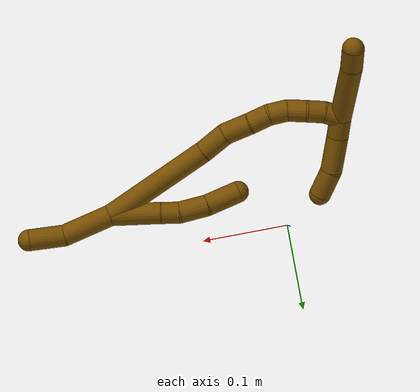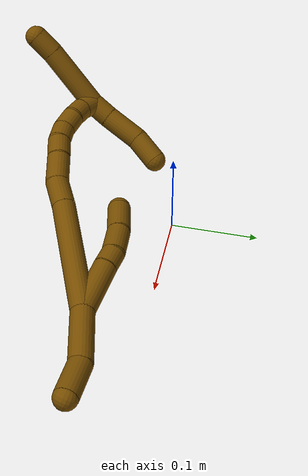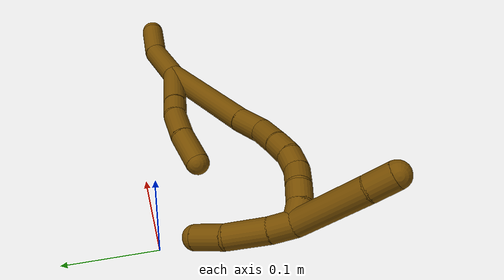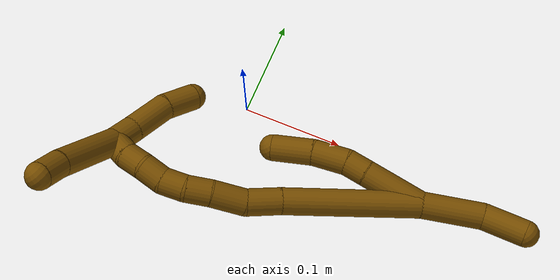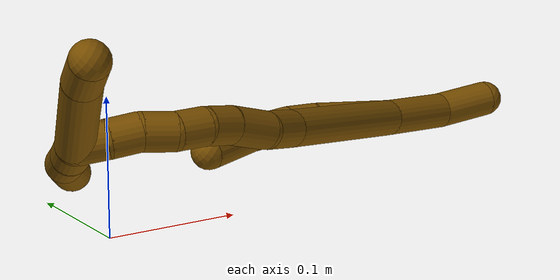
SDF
<sdf version="1.7">
 <world name="default">
  <model name="12">
   <static>0</static>
   <link name="12">
    <collision name="collision-cylinder-e_1_2_8">
     <pose>-0.014283 0.008505 0.023288 -0.350168 -0.522661 0.09455</pose>
     <geometry><cylinder><radius>0.0125</radius><length>0.057226</length></cylinder></geometry>
     <surface>
      <friction><ode><mu>1.16</mu><mu2>1.16</mu2><slip1>0</slip1><slip2>0</slip2></ode></friction>
      <contact><ode><kp>1e+06</kp><kd>1</kd><max_vel>0</max_vel><min_depth>0.001</min_depth></ode></contact>
     </surface>
    </collision>
    <visual name="visual-cylinder-e_1_2_8">
     <pose>-0.014283 0.008505 0.023288 -0.350168 -0.522661 0.09455</pose>
     <geometry><cylinder><radius>0.0125</radius><length>0.057226</length></cylinder></geometry>
     <material><ambient>0.466667 0.301961 0 1</ambient></material>
    </visual>
    <collision name="collision-cylinder-e_2_8_9">
     <pose>-0.03406 0.020796 0.054555 -0.442942 -0.556519 0.128469</pose>
     <geometry><cylinder><radius>0.0125</radius><length>0.0208</length></cylinder></geometry>
     <surface>
      <friction><ode><mu>1.16</mu><mu2>1.16</mu2><slip1>0</slip1><slip2>0</slip2></ode></friction>
      <contact><ode><kp>1e+06</kp><kd>1</kd><max_vel>0</max_vel><min_depth>0.001</min_depth></ode></contact>
     </surface>
    </collision>
    <visual name="visual-cylinder-e_2_8_9">
     <pose>-0.03406 0.020796 0.054555 -0.442942 -0.556519 0.128469</pose>
     <geometry><cylinder><radius>0.0125</radius><length>0.0208</length></cylinder></geometry>
     <material><ambient>0.466667 0.301961 0 1</ambient></material>
    </visual>
    <collision name="collision-cylinder-e_3_9_10">
     <pose>-0.050962 0.028012 0.073775 -0.296258 -0.770533 0.120881</pose>
     <geometry><cylinder><radius>0.0125</radius><length>0.032759</length></cylinder></geometry>
     <surface>
      <friction><ode><mu>1.16</mu><mu2>1.16</mu2><slip1>0</slip1><slip2>0</slip2></ode></friction>
      <contact><ode><kp>1e+06</kp><kd>1</kd><max_vel>0</max_vel><min_depth>0.001</min_depth></ode></contact>
     </surface>
    </collision>
    <visual name="visual-cylinder-e_3_9_10">
     <pose>-0.050962 0.028012 0.073775 -0.296258 -0.770533 0.120881</pose>
     <geometry><cylinder><radius>0.0125</radius><length>0.032759</length></cylinder></geometry>
     <material><ambient>0.466667 0.301961 0 1</ambient></material>
    </visual>
    <collision name="collision-cylinder-e_4_10_6">
     <pose>-0.077952 0.033687 0.096705 -0.18965 -0.918425 0.093989</pose>
     <geometry><cylinder><radius>0.0125</radius><length>0.039215</length></cylinder></geometry>
     <surface>
      <friction><ode><mu>1.16</mu><mu2>1.16</mu2><slip1>0</slip1><slip2>0</slip2></ode></friction>
      <contact><ode><kp>1e+06</kp><kd>1</kd><max_vel>0</max_vel><min_depth>0.001</min_depth></ode></contact>
     </surface>
    </collision>
    <visual name="visual-cylinder-e_4_10_6">
     <pose>-0.077952 0.033687 0.096705 -0.18965 -0.918425 0.093989</pose>
     <geometry><cylinder><radius>0.0125</radius><length>0.039215</length></cylinder></geometry>
     <material><ambient>0.466667 0.301961 0 1</ambient></material>
    </visual>
    <collision name="collision-cylinder-e_1_2_11">
     <pose>0.020275 0.000219 -0.021169 -3.13126 0.76382 -3.11587</pose>
     <geometry><cylinder><radius>0.0125</radius><length>0.058626</length></cylinder></geometry>
     <surface>
      <friction><ode><mu>1.16</mu><mu2>1.16</mu2><slip1>0</slip1><slip2>0</slip2></ode></friction>
      <contact><ode><kp>1e+06</kp><kd>1</kd><max_vel>0</max_vel><min_depth>0.001</min_depth></ode></contact>
     </surface>
    </collision>
    <visual name="visual-cylinder-e_1_2_11">
     <pose>0.020275 0.000219 -0.021169 -3.13126 0.76382 -3.11587</pose>
     <geometry><cylinder><radius>0.0125</radius><length>0.058626</length></cylinder></geometry>
     <material><ambient>0.466667 0.301961 0 1</ambient></material>
    </visual>
    <collision name="collision-cylinder-e_2_11_5">
     <pose>0.05389 -0.006321 -0.056632 2.69994 0.700762 2.03991</pose>
     <geometry><cylinder><radius>0.0125</radius><length>0.041374</length></cylinder></geometry>
     <surface>
      <friction><ode><mu>1.16</mu><mu2>1.16</mu2><slip1>0</slip1><slip2>0</slip2></ode></friction>
      <contact><ode><kp>1e+06</kp><kd>1</kd><max_vel>0</max_vel><min_depth>0.001</min_depth></ode></contact>
     </surface>
    </collision>
    <visual name="visual-cylinder-e_2_11_5">
     <pose>0.05389 -0.006321 -0.056632 2.69994 0.700762 2.03991</pose>
     <geometry><cylinder><radius>0.0125</radius><length>0.041374</length></cylinder></geometry>
     <material><ambient>0.466667 0.301961 0 1</ambient></material>
    </visual>
    <collision name="collision-cylinder-e_1_2_12">
     <pose>-0.046157 -0.012503 0.043415 0.280404 -0.796097 -0.118548</pose>
     <geometry><cylinder><radius>0.0125</radius><length>0.129177</length></cylinder></geometry>
     <surface>
      <friction><ode><mu>1.16</mu><mu2>1.16</mu2><slip1>0</slip1><slip2>0</slip2></ode></friction>
      <contact><ode><kp>1e+06</kp><kd>1</kd><max_vel>0</max_vel><min_depth>0.001</min_depth></ode></contact>
     </surface>
    </collision>
    <visual name="visual-cylinder-e_1_2_12">
     <pose>-0.046157 -0.012503 0.043415 0.280404 -0.796097 -0.118548</pose>
     <geometry><cylinder><radius>0.0125</radius><length>0.129177</length></cylinder></geometry>
     <material><ambient>0.466667 0.301961 0 1</ambient></material>
    </visual>
    <collision name="collision-cylinder-e_2_12_13">
     <pose>-0.103828 -0.029511 0.097351 0.404572 -0.788424 -0.170218</pose>
     <geometry><cylinder><radius>0.0125</radius><length>0.032468</length></cylinder></geometry>
     <surface>
      <friction><ode><mu>1.16</mu><mu2>1.16</mu2><slip1>0</slip1><slip2>0</slip2></ode></friction>
      <contact><ode><kp>1e+06</kp><kd>1</kd><max_vel>0</max_vel><min_depth>0.001</min_depth></ode></contact>
     </surface>
    </collision>
    <visual name="visual-cylinder-e_2_12_13">
     <pose>-0.103828 -0.029511 0.097351 0.404572 -0.788424 -0.170218</pose>
     <geometry><cylinder><radius>0.0125</radius><length>0.032468</length></cylinder></geometry>
     <material><ambient>0.466667 0.301961 0 1</ambient></material>
    </visual>
    <collision name="collision-cylinder-e_3_13_14">
     <pose>-0.124212 -0.035672 0.121109 0.124443 -0.586775 -0.037639</pose>
     <geometry><cylinder><radius>0.0125</radius><length>0.032043</length></cylinder></geometry>
     <surface>
      <friction><ode><mu>1.16</mu><mu2>1.16</mu2><slip1>0</slip1><slip2>0</slip2></ode></friction>
      <contact><ode><kp>1e+06</kp><kd>1</kd><max_vel>0</max_vel><min_depth>0.001</min_depth></ode></contact>
     </surface>
    </collision>
    <visual name="visual-cylinder-e_3_13_14">
     <pose>-0.124212 -0.035672 0.121109 0.124443 -0.586775 -0.037639</pose>
     <geometry><cylinder><radius>0.0125</radius><length>0.032043</length></cylinder></geometry>
     <material><ambient>0.466667 0.301961 0 1</ambient></material>
    </visual>
    <collision name="collision-cylinder-e_4_14_15">
     <pose>-0.14064 -0.038076 0.143008 0.086126 -0.715658 -0.032222</pose>
     <geometry><cylinder><radius>0.0125</radius><length>0.023037</length></cylinder></geometry>
     <surface>
      <friction><ode><mu>1.16</mu><mu2>1.16</mu2><slip1>0</slip1><slip2>0</slip2></ode></friction>
      <contact><ode><kp>1e+06</kp><kd>1</kd><max_vel>0</max_vel><min_depth>0.001</min_depth></ode></contact>
     </surface>
    </collision>
    <visual name="visual-cylinder-e_4_14_15">
     <pose>-0.14064 -0.038076 0.143008 0.086126 -0.715658 -0.032222</pose>
     <geometry><cylinder><radius>0.0125</radius><length>0.023037</length></cylinder></geometry>
     <material><ambient>0.466667 0.301961 0 1</ambient></material>
    </visual>
    <collision name="collision-cylinder-e_5_15_16">
     <pose>-0.155251 -0.036747 0.159509 -0.258851 -0.715752 0.097273</pose>
     <geometry><cylinder><radius>0.0125</radius><length>0.021499</length></cylinder></geometry>
     <surface>
      <friction><ode><mu>1.16</mu><mu2>1.16</mu2><slip1>0</slip1><slip2>0</slip2></ode></friction>
      <contact><ode><kp>1e+06</kp><kd>1</kd><max_vel>0</max_vel><min_depth>0.001</min_depth></ode></contact>
     </surface>
    </collision>
    <visual name="visual-cylinder-e_5_15_16">
     <pose>-0.155251 -0.036747 0.159509 -0.258851 -0.715752 0.097273</pose>
     <geometry><cylinder><radius>0.0125</radius><length>0.021499</length></cylinder></geometry>
     <material><ambient>0.466667 0.301961 0 1</ambient></material>
    </visual>
    <collision name="collision-cylinder-e_6_16_17">
     <pose>-0.166929 -0.030889 0.17635 -0.397805 -0.442404 0.090596</pose>
     <geometry><cylinder><radius>0.0125</radius><length>0.021602</length></cylinder></geometry>
     <surface>
      <friction><ode><mu>1.16</mu><mu2>1.16</mu2><slip1>0</slip1><slip2>0</slip2></ode></friction>
      <contact><ode><kp>1e+06</kp><kd>1</kd><max_vel>0</max_vel><min_depth>0.001</min_depth></ode></contact>
     </surface>
    </collision>
    <visual name="visual-cylinder-e_6_16_17">
     <pose>-0.166929 -0.030889 0.17635 -0.397805 -0.442404 0.090596</pose>
     <geometry><cylinder><radius>0.0125</radius><length>0.021602</length></cylinder></geometry>
     <material><ambient>0.466667 0.301961 0 1</ambient></material>
    </visual>
    <collision name="collision-cylinder-e_7_17_18">
     <pose>-0.17706 -0.02228 0.192283 -0.608144 -0.577646 0.185944</pose>
     <geometry><cylinder><radius>0.0125</radius><length>0.020173</length></cylinder></geometry>
     <surface>
      <friction><ode><mu>1.16</mu><mu2>1.16</mu2><slip1>0</slip1><slip2>0</slip2></ode></friction>
      <contact><ode><kp>1e+06</kp><kd>1</kd><max_vel>0</max_vel><min_depth>0.001</min_depth></ode></contact>
     </surface>
    </collision>
    <visual name="visual-cylinder-e_7_17_18">
     <pose>-0.17706 -0.02228 0.192283 -0.608144 -0.577646 0.185944</pose>
     <geometry><cylinder><radius>0.0125</radius><length>0.020173</length></cylinder></geometry>
     <material><ambient>0.466667 0.301961 0 1</ambient></material>
    </visual>
    <collision name="collision-cylinder-e_8_18_1">
     <pose>-0.186526 -0.011028 0.205783 -0.774632 -0.406822 0.167883</pose>
     <geometry><cylinder><radius>0.0125</radius><length>0.020003</length></cylinder></geometry>
     <surface>
      <friction><ode><mu>1.16</mu><mu2>1.16</mu2><slip1>0</slip1><slip2>0</slip2></ode></friction>
      <contact><ode><kp>1e+06</kp><kd>1</kd><max_vel>0</max_vel><min_depth>0.001</min_depth></ode></contact>
     </surface>
    </collision>
    <visual name="visual-cylinder-e_8_18_1">
     <pose>-0.186526 -0.011028 0.205783 -0.774632 -0.406822 0.167883</pose>
     <geometry><cylinder><radius>0.0125</radius><length>0.020003</length></cylinder></geometry>
     <material><ambient>0.466667 0.301961 0 1</ambient></material>
    </visual>
    <collision name="collision-cylinder-e_1_1_19">
     <pose>-0.197524 -0.037086 0.228863 1.1004 -0.190857 -0.11729</pose>
     <geometry><cylinder><radius>0.0125</radius><length>0.074228</length></cylinder></geometry>
     <surface>
      <friction><ode><mu>1.16</mu><mu2>1.16</mu2><slip1>0</slip1><slip2>0</slip2></ode></friction>
      <contact><ode><kp>1e+06</kp><kd>1</kd><max_vel>0</max_vel><min_depth>0.001</min_depth></ode></contact>
     </surface>
    </collision>
    <visual name="visual-cylinder-e_1_1_19">
     <pose>-0.197524 -0.037086 0.228863 1.1004 -0.190857 -0.11729</pose>
     <geometry><cylinder><radius>0.0125</radius><length>0.074228</length></cylinder></geometry>
     <material><ambient>0.466667 0.301961 0 1</ambient></material>
    </visual>
    <collision name="collision-cylinder-e_2_19_4">
     <pose>-0.207199 -0.081408 0.24973 1.21868 -0.205913 -0.143975</pose>
     <geometry><cylinder><radius>0.0125</radius><length>0.025772</length></cylinder></geometry>
     <surface>
      <friction><ode><mu>1.16</mu><mu2>1.16</mu2><slip1>0</slip1><slip2>0</slip2></ode></friction>
      <contact><ode><kp>1e+06</kp><kd>1</kd><max_vel>0</max_vel><min_depth>0.001</min_depth></ode></contact>
     </surface>
    </collision>
    <visual name="visual-cylinder-e_2_19_4">
     <pose>-0.207199 -0.081408 0.24973 1.21868 -0.205913 -0.143975</pose>
     <geometry><cylinder><radius>0.0125</radius><length>0.025772</length></cylinder></geometry>
     <material><ambient>0.466667 0.301961 0 1</ambient></material>
    </visual>
    <collision name="collision-cylinder-e_1_1_20">
     <pose>-0.185672 0.006131 0.208683 -1.89971 0.401152 -0.553831</pose>
     <geometry><cylinder><radius>0.0125</radius><length>0.024641</length></cylinder></geometry>
     <surface>
      <friction><ode><mu>1.16</mu><mu2>1.16</mu2><slip1>0</slip1><slip2>0</slip2></ode></friction>
      <contact><ode><kp>1e+06</kp><kd>1</kd><max_vel>0</max_vel><min_depth>0.001</min_depth></ode></contact>
     </surface>
    </collision>
    <visual name="visual-cylinder-e_1_1_20">
     <pose>-0.185672 0.006131 0.208683 -1.89971 0.401152 -0.553831</pose>
     <geometry><cylinder><radius>0.0125</radius><length>0.024641</length></cylinder></geometry>
     <material><ambient>0.466667 0.301961 0 1</ambient></material>
    </visual>
    <collision name="collision-cylinder-e_2_20_21">
     <pose>-0.170185 0.034501 0.199636 -1.86707 0.52484 -0.696151</pose>
     <geometry><cylinder><radius>0.0125</radius><length>0.042614</length></cylinder></geometry>
     <surface>
      <friction><ode><mu>1.16</mu><mu2>1.16</mu2><slip1>0</slip1><slip2>0</slip2></ode></friction>
      <contact><ode><kp>1e+06</kp><kd>1</kd><max_vel>0</max_vel><min_depth>0.001</min_depth></ode></contact>
     </surface>
    </collision>
    <visual name="visual-cylinder-e_2_20_21">
     <pose>-0.170185 0.034501 0.199636 -1.86707 0.52484 -0.696151</pose>
     <geometry><cylinder><radius>0.0125</radius><length>0.042614</length></cylinder></geometry>
     <material><ambient>0.466667 0.301961 0 1</ambient></material>
    </visual>
    <collision name="collision-cylinder-e_3_21_3">
     <pose>-0.150948 0.063808 0.1866 -2.15118 0.550221 -0.963167</pose>
     <geometry><cylinder><radius>0.0125</radius><length>0.032745</length></cylinder></geometry>
     <surface>
      <friction><ode><mu>1.16</mu><mu2>1.16</mu2><slip1>0</slip1><slip2>0</slip2></ode></friction>
      <contact><ode><kp>1e+06</kp><kd>1</kd><max_vel>0</max_vel><min_depth>0.001</min_depth></ode></contact>
     </surface>
    </collision>
    <visual name="visual-cylinder-e_3_21_3">
     <pose>-0.150948 0.063808 0.1866 -2.15118 0.550221 -0.963167</pose>
     <geometry><cylinder><radius>0.0125</radius><length>0.032745</length></cylinder></geometry>
     <material><ambient>0.466667 0.301961 0 1</ambient></material>
    </visual>
    <collision name="collision-sphere-3">
     <pose>-0.142387 0.075479 0.178947 0 -0 0</pose>
     <geometry><sphere><radius>0.0125</radius></sphere></geometry>
     <surface>
      <friction><ode><mu>1.16</mu><mu2>1.16</mu2><slip1>0</slip1><slip2>0</slip2></ode></friction>
      <contact><ode><kp>1e+06</kp><kd>1</kd><max_vel>0</max_vel><min_depth>0.001</min_depth></ode></contact>
     </surface>
    </collision>
    <visual name="visual-sphere-3">
     <pose>-0.142387 0.075479 0.178947 0 -0 0</pose>
     <geometry><sphere><radius>0.0125</radius></sphere></geometry>
     <material><ambient>0.466667 0.301961 0 1</ambient></material>
    </visual>
    <collision name="collision-sphere-21">
     <pose>-0.159508 0.052137 0.194252 0 -0 0</pose>
     <geometry><sphere><radius>0.0125</radius></sphere></geometry>
     <surface>
      <friction><ode><mu>1.16</mu><mu2>1.16</mu2><slip1>0</slip1><slip2>0</slip2></ode></friction>
      <contact><ode><kp>1e+06</kp><kd>1</kd><max_vel>0</max_vel><min_depth>0.001</min_depth></ode></contact>
     </surface>
    </collision>
    <visual name="visual-sphere-21">
     <pose>-0.159508 0.052137 0.194252 0 -0 0</pose>
     <geometry><sphere><radius>0.0125</radius></sphere></geometry>
     <material><ambient>0.466667 0.301961 0 1</ambient></material>
    </visual>
    <collision name="collision-sphere-20">
     <pose>-0.180861 0.016865 0.205019 0 -0 0</pose>
     <geometry><sphere><radius>0.0125</radius></sphere></geometry>
     <surface>
      <friction><ode><mu>1.16</mu><mu2>1.16</mu2><slip1>0</slip1><slip2>0</slip2></ode></friction>
      <contact><ode><kp>1e+06</kp><kd>1</kd><max_vel>0</max_vel><min_depth>0.001</min_depth></ode></contact>
     </surface>
    </collision>
    <visual name="visual-sphere-20">
     <pose>-0.180861 0.016865 0.205019 0 -0 0</pose>
     <geometry><sphere><radius>0.0125</radius></sphere></geometry>
     <material><ambient>0.466667 0.301961 0 1</ambient></material>
    </visual>
    <collision name="collision-sphere-4">
     <pose>-0.209833 -0.093247 0.25408 0 -0 0</pose>
     <geometry><sphere><radius>0.0125</radius></sphere></geometry>
     <surface>
      <friction><ode><mu>1.16</mu><mu2>1.16</mu2><slip1>0</slip1><slip2>0</slip2></ode></friction>
      <contact><ode><kp>1e+06</kp><kd>1</kd><max_vel>0</max_vel><min_depth>0.001</min_depth></ode></contact>
     </surface>
    </collision>
    <visual name="visual-sphere-4">
     <pose>-0.209833 -0.093247 0.25408 0 -0 0</pose>
     <geometry><sphere><radius>0.0125</radius></sphere></geometry>
     <material><ambient>0.466667 0.301961 0 1</ambient></material>
    </visual>
    <collision name="collision-sphere-11">
     <pose>0.040551 0.000437 -0.042337 0 -0 0</pose>
     <geometry><sphere><radius>0.0125</radius></sphere></geometry>
     <surface>
      <friction><ode><mu>1.16</mu><mu2>1.16</mu2><slip1>0</slip1><slip2>0</slip2></ode></friction>
      <contact><ode><kp>1e+06</kp><kd>1</kd><max_vel>0</max_vel><min_depth>0.001</min_depth></ode></contact>
     </surface>
    </collision>
    <visual name="visual-sphere-11">
     <pose>0.040551 0.000437 -0.042337 0 -0 0</pose>
     <geometry><sphere><radius>0.0125</radius></sphere></geometry>
     <material><ambient>0.466667 0.301961 0 1</ambient></material>
    </visual>
    <collision name="collision-sphere-6">
     <pose>-0.093533 0.035931 0.108395 0 -0 0</pose>
     <geometry><sphere><radius>0.0125</radius></sphere></geometry>
     <surface>
      <friction><ode><mu>1.16</mu><mu2>1.16</mu2><slip1>0</slip1><slip2>0</slip2></ode></friction>
      <contact><ode><kp>1e+06</kp><kd>1</kd><max_vel>0</max_vel><min_depth>0.001</min_depth></ode></contact>
     </surface>
    </collision>
    <visual name="visual-sphere-6">
     <pose>-0.093533 0.035931 0.108395 0 -0 0</pose>
     <geometry><sphere><radius>0.0125</radius></sphere></geometry>
     <material><ambient>0.466667 0.301961 0 1</ambient></material>
    </visual>
    <collision name="collision-sphere-10">
     <pose>-0.062371 0.031443 0.085016 0 -0 0</pose>
     <geometry><sphere><radius>0.0125</radius></sphere></geometry>
     <surface>
      <friction><ode><mu>1.16</mu><mu2>1.16</mu2><slip1>0</slip1><slip2>0</slip2></ode></friction>
      <contact><ode><kp>1e+06</kp><kd>1</kd><max_vel>0</max_vel><min_depth>0.001</min_depth></ode></contact>
     </surface>
    </collision>
    <visual name="visual-sphere-10">
     <pose>-0.062371 0.031443 0.085016 0 -0 0</pose>
     <geometry><sphere><radius>0.0125</radius></sphere></geometry>
     <material><ambient>0.466667 0.301961 0 1</ambient></material>
    </visual>
    <collision name="collision-sphere-9">
     <pose>-0.039554 0.02458 0.062534 0 -0 0</pose>
     <geometry><sphere><radius>0.0125</radius></sphere></geometry>
     <surface>
      <friction><ode><mu>1.16</mu><mu2>1.16</mu2><slip1>0</slip1><slip2>0</slip2></ode></friction>
      <contact><ode><kp>1e+06</kp><kd>1</kd><max_vel>0</max_vel><min_depth>0.001</min_depth></ode></contact>
     </surface>
    </collision>
    <visual name="visual-sphere-9">
     <pose>-0.039554 0.02458 0.062534 0 -0 0</pose>
     <geometry><sphere><radius>0.0125</radius></sphere></geometry>
     <material><ambient>0.466667 0.301961 0 1</ambient></material>
    </visual>
    <collision name="collision-sphere-2">
     <geometry><sphere><radius>0.0125</radius></sphere></geometry>
     <surface>
      <friction><ode><mu>1.16</mu><mu2>1.16</mu2><slip1>0</slip1><slip2>0</slip2></ode></friction>
      <contact><ode><kp>1e+06</kp><kd>1</kd><max_vel>0</max_vel><min_depth>0.001</min_depth></ode></contact>
     </surface>
    </collision>
    <visual name="visual-sphere-2">
     <geometry><sphere><radius>0.0125</radius></sphere></geometry>
     <material><ambient>0.466667 0.301961 0 1</ambient></material>
    </visual>
    <collision name="collision-sphere-19">
     <pose>-0.204564 -0.069568 0.245379 0 -0 0</pose>
     <geometry><sphere><radius>0.0125</radius></sphere></geometry>
     <surface>
      <friction><ode><mu>1.16</mu><mu2>1.16</mu2><slip1>0</slip1><slip2>0</slip2></ode></friction>
      <contact><ode><kp>1e+06</kp><kd>1</kd><max_vel>0</max_vel><min_depth>0.001</min_depth></ode></contact>
     </surface>
    </collision>
    <visual name="visual-sphere-19">
     <pose>-0.204564 -0.069568 0.245379 0 -0 0</pose>
     <geometry><sphere><radius>0.0125</radius></sphere></geometry>
     <material><ambient>0.466667 0.301961 0 1</ambient></material>
    </visual>
    <collision name="collision-sphere-8">
     <pose>-0.028566 0.017011 0.046577 0 -0 0</pose>
     <geometry><sphere><radius>0.0125</radius></sphere></geometry>
     <surface>
      <friction><ode><mu>1.16</mu><mu2>1.16</mu2><slip1>0</slip1><slip2>0</slip2></ode></friction>
      <contact><ode><kp>1e+06</kp><kd>1</kd><max_vel>0</max_vel><min_depth>0.001</min_depth></ode></contact>
     </surface>
    </collision>
    <visual name="visual-sphere-8">
     <pose>-0.028566 0.017011 0.046577 0 -0 0</pose>
     <geometry><sphere><radius>0.0125</radius></sphere></geometry>
     <material><ambient>0.466667 0.301961 0 1</ambient></material>
    </visual>
    <collision name="collision-sphere-5">
     <pose>0.067229 -0.01308 -0.070927 0 -0 0</pose>
     <geometry><sphere><radius>0.0125</radius></sphere></geometry>
     <surface>
      <friction><ode><mu>1.16</mu><mu2>1.16</mu2><slip1>0</slip1><slip2>0</slip2></ode></friction>
      <contact><ode><kp>1e+06</kp><kd>1</kd><max_vel>0</max_vel><min_depth>0.001</min_depth></ode></contact>
     </surface>
    </collision>
    <visual name="visual-sphere-5">
     <pose>0.067229 -0.01308 -0.070927 0 -0 0</pose>
     <geometry><sphere><radius>0.0125</radius></sphere></geometry>
     <material><ambient>0.466667 0.301961 0 1</ambient></material>
    </visual>
    <collision name="collision-sphere-12">
     <pose>-0.092314 -0.025006 0.08683 0 -0 0</pose>
     <geometry><sphere><radius>0.0125</radius></sphere></geometry>
     <surface>
      <friction><ode><mu>1.16</mu><mu2>1.16</mu2><slip1>0</slip1><slip2>0</slip2></ode></friction>
      <contact><ode><kp>1e+06</kp><kd>1</kd><max_vel>0</max_vel><min_depth>0.001</min_depth></ode></contact>
     </surface>
    </collision>
    <visual name="visual-sphere-12">
     <pose>-0.092314 -0.025006 0.08683 0 -0 0</pose>
     <geometry><sphere><radius>0.0125</radius></sphere></geometry>
     <material><ambient>0.466667 0.301961 0 1</ambient></material>
    </visual>
    <collision name="collision-sphere-13">
     <pose>-0.115341 -0.034016 0.107871 0 -0 0</pose>
     <geometry><sphere><radius>0.0125</radius></sphere></geometry>
     <surface>
      <friction><ode><mu>1.16</mu><mu2>1.16</mu2><slip1>0</slip1><slip2>0</slip2></ode></friction>
      <contact><ode><kp>1e+06</kp><kd>1</kd><max_vel>0</max_vel><min_depth>0.001</min_depth></ode></contact>
     </surface>
    </collision>
    <visual name="visual-sphere-13">
     <pose>-0.115341 -0.034016 0.107871 0 -0 0</pose>
     <geometry><sphere><radius>0.0125</radius></sphere></geometry>
     <material><ambient>0.466667 0.301961 0 1</ambient></material>
    </visual>
    <collision name="collision-sphere-14">
     <pose>-0.133082 -0.037328 0.134347 0 -0 0</pose>
     <geometry><sphere><radius>0.0125</radius></sphere></geometry>
     <surface>
      <friction><ode><mu>1.16</mu><mu2>1.16</mu2><slip1>0</slip1><slip2>0</slip2></ode></friction>
      <contact><ode><kp>1e+06</kp><kd>1</kd><max_vel>0</max_vel><min_depth>0.001</min_depth></ode></contact>
     </surface>
    </collision>
    <visual name="visual-sphere-14">
     <pose>-0.133082 -0.037328 0.134347 0 -0 0</pose>
     <geometry><sphere><radius>0.0125</radius></sphere></geometry>
     <material><ambient>0.466667 0.301961 0 1</ambient></material>
    </visual>
    <collision name="collision-sphere-15">
     <pose>-0.148197 -0.038823 0.151668 0 -0 0</pose>
     <geometry><sphere><radius>0.0125</radius></sphere></geometry>
     <surface>
      <friction><ode><mu>1.16</mu><mu2>1.16</mu2><slip1>0</slip1><slip2>0</slip2></ode></friction>
      <contact><ode><kp>1e+06</kp><kd>1</kd><max_vel>0</max_vel><min_depth>0.001</min_depth></ode></contact>
     </surface>
    </collision>
    <visual name="visual-sphere-15">
     <pose>-0.148197 -0.038823 0.151668 0 -0 0</pose>
     <geometry><sphere><radius>0.0125</radius></sphere></geometry>
     <material><ambient>0.466667 0.301961 0 1</ambient></material>
    </visual>
    <collision name="collision-sphere-16">
     <pose>-0.162305 -0.034671 0.167351 0 -0 0</pose>
     <geometry><sphere><radius>0.0125</radius></sphere></geometry>
     <surface>
      <friction><ode><mu>1.16</mu><mu2>1.16</mu2><slip1>0</slip1><slip2>0</slip2></ode></friction>
      <contact><ode><kp>1e+06</kp><kd>1</kd><max_vel>0</max_vel><min_depth>0.001</min_depth></ode></contact>
     </surface>
    </collision>
    <visual name="visual-sphere-16">
     <pose>-0.162305 -0.034671 0.167351 0 -0 0</pose>
     <geometry><sphere><radius>0.0125</radius></sphere></geometry>
     <material><ambient>0.466667 0.301961 0 1</ambient></material>
    </visual>
    <collision name="collision-sphere-17">
     <pose>-0.171553 -0.027108 0.185348 0 -0 0</pose>
     <geometry><sphere><radius>0.0125</radius></sphere></geometry>
     <surface>
      <friction><ode><mu>1.16</mu><mu2>1.16</mu2><slip1>0</slip1><slip2>0</slip2></ode></friction>
      <contact><ode><kp>1e+06</kp><kd>1</kd><max_vel>0</max_vel><min_depth>0.001</min_depth></ode></contact>
     </surface>
    </collision>
    <visual name="visual-sphere-17">
     <pose>-0.171553 -0.027108 0.185348 0 -0 0</pose>
     <geometry><sphere><radius>0.0125</radius></sphere></geometry>
     <material><ambient>0.466667 0.301961 0 1</ambient></material>
    </visual>
    <collision name="collision-sphere-18">
     <pose>-0.182568 -0.017452 0.199218 0 -0 0</pose>
     <geometry><sphere><radius>0.0125</radius></sphere></geometry>
     <surface>
      <friction><ode><mu>1.16</mu><mu2>1.16</mu2><slip1>0</slip1><slip2>0</slip2></ode></friction>
      <contact><ode><kp>1e+06</kp><kd>1</kd><max_vel>0</max_vel><min_depth>0.001</min_depth></ode></contact>
     </surface>
    </collision>
    <visual name="visual-sphere-18">
     <pose>-0.182568 -0.017452 0.199218 0 -0 0</pose>
     <geometry><sphere><radius>0.0125</radius></sphere></geometry>
     <material><ambient>0.466667 0.301961 0 1</ambient></material>
    </visual>
    <collision name="collision-sphere-1">
     <pose>-0.190483 -0.004603 0.212347 0 -0 0</pose>
     <geometry><sphere><radius>0.0125</radius></sphere></geometry>
     <surface>
      <friction><ode><mu>1.16</mu><mu2>1.16</mu2><slip1>0</slip1><slip2>0</slip2></ode></friction>
      <contact><ode><kp>1e+06</kp><kd>1</kd><max_vel>0</max_vel><min_depth>0.001</min_depth></ode></contact>
     </surface>
    </collision>
    <visual name="visual-sphere-1">
     <pose>-0.190483 -0.004603 0.212347 0 -0 0</pose>
     <geometry><sphere><radius>0.0125</radius></sphere></geometry>
     <material><ambient>0.466667 0.301961 0 1</ambient></material>
    </visual>
    <inertial>
     <pose>-0.093874 -0.006602 0.105939 0 -0 0</pose>
     <mass>0.75</mass>
     <inertia>
      <ixx>0.00016</ixx>
      <ixy>0</ixy>
      <ixz>0</ixz>
      <iyy>0.000247</iyy>
      <iyz>0</iyz>
      <izz>0.000215</izz>
     </inertia>
    </inertial>
   </link>
   <pose>0.198327 -0.050704 0.069383 -0.757257 -0.557371 0.742233</pose>
  </model>
 </world>
</sdf>
